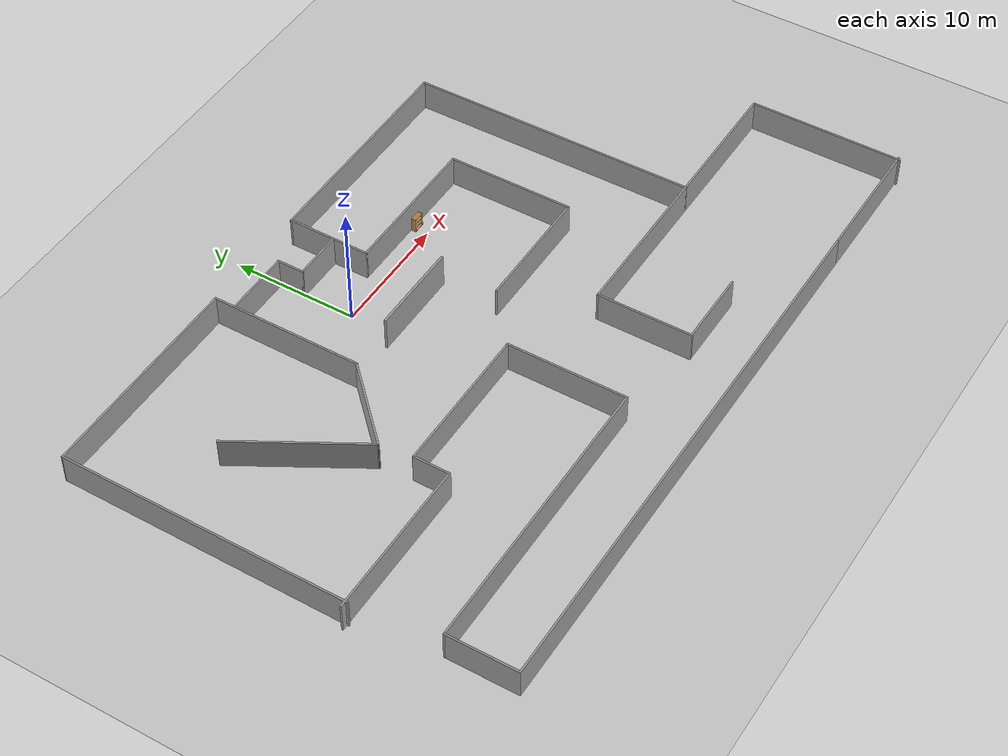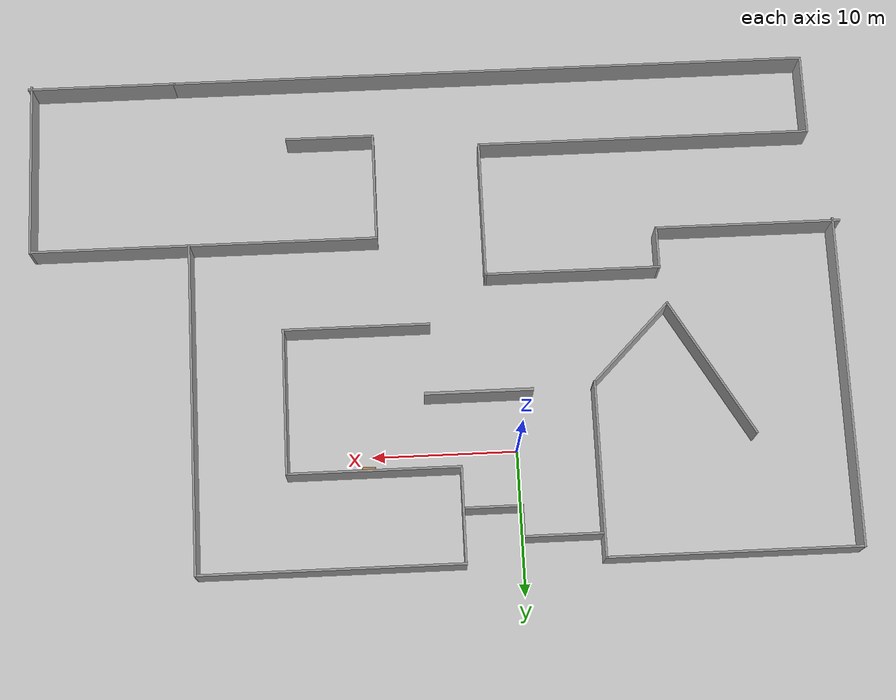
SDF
<sdf version="1.7">
 <world name="default">
  <light name="sun" type="directional">
   <pose>0 0 10 0 -0 0</pose>
   <diffuse>0.8 0.8 0.8 1</diffuse>
   <specular>0.2 0.2 0.2 1</specular>
   <attenuation>
    <range>1000</range>
    <constant>0.9</constant>
    <linear>0.01</linear>
    <quadratic>0.001</quadratic>
   </attenuation>
   <direction>-0.5 0.1 -0.9</direction>
   <spot><inner_angle>0</inner_angle><outer_angle>0</outer_angle><falloff>0</falloff></spot>
  </light>
  <model name="ground_plane">
   <static>1</static>
   <link name="link">
    <collision name="collision">
     <geometry><plane><normal>0 0 1</normal><size>100 100</size></plane></geometry>
     <surface><friction><ode><mu>100</mu><mu2>50</mu2></ode></friction></surface>
    </collision>
    <visual name="visual">
     <cast_shadows>0</cast_shadows>
     <geometry><plane><normal>0 0 1</normal><size>100 100</size></plane></geometry>
     <material>
      <script><uri>file://media/materials/scripts/gazebo.material</uri><name>Gazebo/Grey</name></script>
     </material>
    </visual>
   </link>
  </model>
  <gravity>0 0 -9.8</gravity>
  <magnetic_field>6e-06 2.3e-05 -4.2e-05</magnetic_field>
  <atmosphere type="adiabatic"/>
  <physics type="ode">
   <max_step_size>0.001</max_step_size>
   <real_time_factor>1</real_time_factor>
   <real_time_update_rate>1000</real_time_update_rate>
  </physics>
  <scene><ambient>0.4 0.4 0.4 1</ambient><background>0.7 0.7 0.7 1</background><shadows>1</shadows></scene>
  <spherical_coordinates>
   <surface_model>EARTH_WGS84</surface_model>
   <latitude_deg>0</latitude_deg>
   <longitude_deg>0</longitude_deg>
   <elevation>0</elevation>
   <heading_deg>0</heading_deg>
  </spherical_coordinates>
  <model name="indoor">
   <pose>5.05793 -9.80108 0 0 -0 0</pose>
   <link name="Wall_10">
    <collision name="Wall_10_Collision">
     <geometry><box><size>11 0.15 2.5</size></box></geometry>
     <pose>0 0 1.25 0 -0 0</pose>
    </collision>
    <visual name="Wall_10_Visual">
     <pose>0 0 1.25 0 -0 0</pose>
     <geometry><box><size>11 0.15 2.5</size></box></geometry>
     <material>
      <script><uri>file://media/materials/scripts/gazebo.material</uri><name>Gazebo/Grey</name></script>
      <ambient>1 1 1 1</ambient>
     </material>
     <meta><layer>0</layer></meta>
    </visual>
    <pose>-18.6044 4.94904 0 0 -0 2.0944</pose>
   </link>
   <link name="Wall_12">
    <collision name="Wall_12_Collision">
     <geometry><box><size>18.25 0.15 2.5</size></box></geometry>
     <pose>0 0 1.25 0 -0 0</pose>
    </collision>
    <visual name="Wall_12_Visual">
     <pose>0 0 1.25 0 -0 0</pose>
     <geometry><box><size>18.25 0.15 2.5</size></box></geometry>
     <material>
      <script><uri>file://media/materials/scripts/gazebo.material</uri><name>Gazebo/Grey</name></script>
      <ambient>1 1 1 1</ambient>
     </material>
     <meta><layer>0</layer></meta>
    </visual>
    <pose>7.93209 17.7249 0 0 -0 3.14159</pose>
   </link>
   <link name="Wall_13">
    <collision name="Wall_13_Collision">
     <geometry><box><size>6.75 0.15 2.5</size></box></geometry>
     <pose>0 0 1.25 0 -0 0</pose>
    </collision>
    <visual name="Wall_13_Visual">
     <pose>0 0 1.25 0 -0 0</pose>
     <geometry><box><size>6.75 0.15 2.5</size></box></geometry>
     <material>
      <script><uri>file://media/materials/scripts/gazebo.material</uri><name>Gazebo/Grey</name></script>
      <ambient>1 1 1 1</ambient>
     </material>
     <meta><layer>0</layer></meta>
    </visual>
    <pose>-1.11791 14.4249 0 0 -0 -1.5708</pose>
   </link>
   <link name="Wall_14">
    <collision name="Wall_14_Collision">
     <geometry><box><size>12 0.15 2.5</size></box></geometry>
     <pose>0 0 1.25 0 -0 0</pose>
    </collision>
    <visual name="Wall_14_Visual">
     <pose>0 0 1.25 0 -0 0</pose>
     <geometry><box><size>12 0.15 2.5</size></box></geometry>
     <material>
      <script><uri>file://media/materials/scripts/gazebo.material</uri><name>Gazebo/Grey</name></script>
      <ambient>1 1 1 1</ambient>
     </material>
     <meta><layer>0</layer></meta>
    </visual>
    <pose>4.80709 11.1249 0 0 -0 0</pose>
   </link>
   <link name="Wall_15">
    <collision name="Wall_15_Collision">
     <geometry><box><size>10.25 0.15 2.5</size></box></geometry>
     <pose>0 0 1.25 0 -0 0</pose>
    </collision>
    <visual name="Wall_15_Visual">
     <pose>0 0 1.25 0 -0 0</pose>
     <geometry><box><size>10.25 0.15 2.5</size></box></geometry>
     <material>
      <script><uri>file://media/materials/scripts/gazebo.material</uri><name>Gazebo/Grey</name></script>
      <ambient>1 1 1 1</ambient>
     </material>
     <meta><layer>0</layer></meta>
    </visual>
    <pose>10.7321 6.07486 0 0 -0 -1.5708</pose>
   </link>
   <link name="Wall_16">
    <collision name="Wall_16_Collision">
     <geometry><box><size>10.25 0.15 2.5</size></box></geometry>
     <pose>0 0 1.25 0 -0 0</pose>
    </collision>
    <visual name="Wall_16_Visual">
     <pose>0 0 1.25 0 -0 0</pose>
     <geometry><box><size>10.25 0.15 2.5</size></box></geometry>
     <material>
      <script><uri>file://media/materials/scripts/gazebo.material</uri><name>Gazebo/Grey</name></script>
      <ambient>1 1 1 1</ambient>
     </material>
     <meta><layer>0</layer></meta>
    </visual>
    <pose>5.68209 1.02486 0 0 -0 3.14159</pose>
   </link>
   <link name="Wall_19">
    <collision name="Wall_19_Collision">
     <geometry><box><size>2.25 0.15 2.5</size></box></geometry>
     <pose>0 0 1.25 0 -0 0</pose>
    </collision>
    <visual name="Wall_19_Visual">
     <pose>0 0 1.25 0 -0 0</pose>
     <geometry><box><size>2.25 0.15 2.5</size></box></geometry>
     <material>
      <script><uri>file://media/materials/scripts/gazebo.material</uri><name>Gazebo/Grey</name></script>
      <ambient>1 1 1 1</ambient>
     </material>
     <meta><layer>0</layer></meta>
    </visual>
    <pose>-5.09125 15.025 0 0 -0 -1.5708</pose>
   </link>
   <link name="Wall_20">
    <collision name="Wall_20_Collision">
     <geometry><box><size>4 0.15 2.5</size></box></geometry>
     <pose>0 0 1.25 0 -0 0</pose>
    </collision>
    <visual name="Wall_20_Visual">
     <pose>0 0 1.25 0 -0 0</pose>
     <geometry><box><size>4 0.15 2.5</size></box></geometry>
     <material>
      <script><uri>file://media/materials/scripts/gazebo.material</uri><name>Gazebo/Grey</name></script>
      <ambient>1 1 1 1</ambient>
     </material>
     <meta><layer>0</layer></meta>
    </visual>
    <pose>-3.16625 13.975 0 0 -0 0</pose>
   </link>
   <link name="Wall_24">
    <collision name="Wall_24_Collision">
     <geometry><box><size>5.5 0.15 2.5</size></box></geometry>
     <pose>0 0 1.25 0 -0 0</pose>
    </collision>
    <visual name="Wall_24_Visual">
     <pose>0 0 1.25 0 -0 0</pose>
     <geometry><box><size>5.5 0.15 2.5</size></box></geometry>
     <material>
      <script><uri>file://media/materials/scripts/gazebo.material</uri><name>Gazebo/Grey</name></script>
      <ambient>1 1 1 1</ambient>
     </material>
     <meta><layer>0</layer></meta>
    </visual>
    <pose>-7.76625 16.075 0 0 -0 3.14159</pose>
   </link>
   <link name="Wall_26">
    <collision name="Wall_26_Collision">
     <geometry><box><size>13 0.15 2.5</size></box></geometry>
     <pose>0 0 1.25 0 -0 0</pose>
    </collision>
    <visual name="Wall_26_Visual">
     <pose>0 0 1.25 0 -0 0</pose>
     <geometry><box><size>13 0.15 2.5</size></box></geometry>
     <material>
      <script><uri>file://media/materials/scripts/gazebo.material</uri><name>Gazebo/Grey</name></script>
      <ambient>1 1 1 1</ambient>
     </material>
     <meta><layer>0</layer></meta>
    </visual>
    <pose>-21.975 -5.22606 0 0 -0 0</pose>
   </link>
   <link name="Wall_27">
    <collision name="Wall_27_Collision">
     <geometry><box><size>3 0.15 2.5</size></box></geometry>
     <pose>0 0 1.25 0 -0 0</pose>
    </collision>
    <visual name="Wall_27_Visual">
     <pose>0 0 1.25 0 -0 0</pose>
     <geometry><box><size>3 0.15 2.5</size></box></geometry>
     <material>
      <script><uri>file://media/materials/scripts/gazebo.material</uri><name>Gazebo/Grey</name></script>
      <ambient>1 1 1 1</ambient>
     </material>
     <meta><layer>0</layer></meta>
    </visual>
    <pose>-15.55 -3.80106 0 0 -0 1.5708</pose>
   </link>
   <link name="Wall_28">
    <collision name="Wall_28_Collision">
     <geometry><box><size>12.25 0.15 2.5</size></box></geometry>
     <pose>0 0 1.25 0 -0 0</pose>
    </collision>
    <visual name="Wall_28_Visual">
     <pose>0 0 1.25 0 -0 0</pose>
     <geometry><box><size>12.25 0.15 2.5</size></box></geometry>
     <material>
      <script><uri>file://media/materials/scripts/gazebo.material</uri><name>Gazebo/Grey</name></script>
      <ambient>1 1 1 1</ambient>
     </material>
     <meta><layer>0</layer></meta>
    </visual>
    <pose>-9.5 -2.37606 0 0 -0 0</pose>
   </link>
   <link name="Wall_29">
    <collision name="Wall_29_Collision">
     <geometry><box><size>9.75 0.15 2.5</size></box></geometry>
     <pose>0 0 1.25 0 -0 0</pose>
    </collision>
    <visual name="Wall_29_Visual">
     <pose>0 0 1.25 0 -0 0</pose>
     <geometry><box><size>9.75 0.15 2.5</size></box></geometry>
     <material>
      <script><uri>file://media/materials/scripts/gazebo.material</uri><name>Gazebo/Grey</name></script>
      <ambient>1 1 1 1</ambient>
     </material>
     <meta><layer>0</layer></meta>
    </visual>
    <pose>-3.45 -7.17606 0 0 -0 -1.5708</pose>
   </link>
   <link name="Wall_3">
    <collision name="Wall_3_Collision">
     <geometry><box><size>23.25 0.15 2.5</size></box></geometry>
     <pose>0 0 1.25 0 -0 0</pose>
    </collision>
    <visual name="Wall_3_Visual">
     <pose>0 0 1.25 0 -0 0</pose>
     <geometry><box><size>23.25 0.15 2.5</size></box></geometry>
     <material>
      <script><uri>file://media/materials/scripts/gazebo.material</uri><name>Gazebo/Grey</name></script>
      <ambient>1 1 1 1</ambient>
     </material>
     <meta><layer>0</layer></meta>
    </visual>
    <pose>17.0635 6.17486 0 0 -0 -1.56375</pose>
   </link>
   <link name="Wall_30">
    <collision name="Wall_30_Collision">
     <geometry><box><size>23.5 0.15 2.5</size></box></geometry>
     <pose>0 0 1.25 0 -0 0</pose>
    </collision>
    <visual name="Wall_30_Visual">
     <pose>0 0 1.25 0 -0 0</pose>
     <geometry><box><size>23.5 0.15 2.5</size></box></geometry>
     <material>
      <script><uri>file://media/materials/scripts/gazebo.material</uri><name>Gazebo/Grey</name></script>
      <ambient>1 1 1 1</ambient>
     </material>
     <meta><layer>0</layer></meta>
    </visual>
    <pose>-15.125 -11.9761 0 0 -0 3.14159</pose>
   </link>
   <link name="Wall_31">
    <collision name="Wall_31_Collision">
     <geometry><box><size>5.75 0.15 2.5</size></box></geometry>
     <pose>0 0 1.25 0 -0 0</pose>
    </collision>
    <visual name="Wall_31_Visual">
     <pose>0 0 1.25 0 -0 0</pose>
     <geometry><box><size>5.75 0.15 2.5</size></box></geometry>
     <material>
      <script><uri>file://media/materials/scripts/gazebo.material</uri><name>Gazebo/Grey</name></script>
      <ambient>1 1 1 1</ambient>
     </material>
     <meta><layer>0</layer></meta>
    </visual>
    <pose>-26.8 -14.7761 0 0 -0 -1.5708</pose>
   </link>
   <link name="Wall_32">
    <collision name="Wall_32_Collision">
     <geometry><box><size>45 0.15 2.5</size></box></geometry>
     <pose>0 0 1.25 0 -0 0</pose>
    </collision>
    <visual name="Wall_32_Visual">
     <pose>0 0 1.25 0 -0 0</pose>
     <geometry><box><size>45 0.15 2.5</size></box></geometry>
     <material>
      <script><uri>file://media/materials/scripts/gazebo.material</uri><name>Gazebo/Grey</name></script>
      <ambient>1 1 1 1</ambient>
     </material>
     <meta><layer>0</layer></meta>
    </visual>
    <pose>-4.375 -17.5761 0 0 -0 0</pose>
   </link>
   <link name="Wall_36">
    <collision name="Wall_36_Collision">
     <geometry><box><size>13.25 0.15 2.5</size></box></geometry>
     <pose>0 0 1.25 0 -0 0</pose>
    </collision>
    <visual name="Wall_36_Visual">
     <pose>0 0 1.25 0 -0 0</pose>
     <geometry><box><size>13.25 0.15 2.5</size></box></geometry>
     <material>
      <script><uri>file://media/materials/scripts/gazebo.material</uri><name>Gazebo/Grey</name></script>
      <ambient>1 1 1 1</ambient>
     </material>
     <meta><layer>0</layer></meta>
    </visual>
    <pose>10.5948 -5.37514 0 0 -0 3.14159</pose>
   </link>
   <link name="Wall_37">
    <collision name="Wall_37_Collision">
     <geometry><box><size>7.75 0.15 2.5</size></box></geometry>
     <pose>0 0 1.25 0 -0 0</pose>
    </collision>
    <visual name="Wall_37_Visual">
     <pose>0 0 1.25 0 -0 0</pose>
     <geometry><box><size>7.75 0.15 2.5</size></box></geometry>
     <material>
      <script><uri>file://media/materials/scripts/gazebo.material</uri><name>Gazebo/Grey</name></script>
      <ambient>1 1 1 1</ambient>
     </material>
     <meta><layer>0</layer></meta>
    </visual>
    <pose>4.04483 -9.17514 0 0 -0 -1.5708</pose>
   </link>
   <link name="Wall_38">
    <collision name="Wall_38_Collision">
     <geometry><box><size>6.25 0.15 2.5</size></box></geometry>
     <pose>0 0 1.25 0 -0 0</pose>
    </collision>
    <visual name="Wall_38_Visual">
     <pose>0 0 1.25 0 -0 0</pose>
     <geometry><box><size>6.25 0.15 2.5</size></box></geometry>
     <material>
      <script><uri>file://media/materials/scripts/gazebo.material</uri><name>Gazebo/Grey</name></script>
      <ambient>1 1 1 1</ambient>
     </material>
     <meta><layer>0</layer></meta>
    </visual>
    <pose>7.09483 -12.9751 0 0 -0 0</pose>
   </link>
   <link name="Wall_40">
    <collision name="Wall_40_Collision">
     <geometry><box><size>11.25 0.15 2.5</size></box></geometry>
     <pose>0 0 1.25 0 -0 0</pose>
    </collision>
    <visual name="Wall_40_Visual">
     <pose>0 0 1.25 0 -0 0</pose>
     <geometry><box><size>11.25 0.15 2.5</size></box></geometry>
     <material>
      <script><uri>file://media/materials/scripts/gazebo.material</uri><name>Gazebo/Grey</name></script>
      <ambient>1 1 1 1</ambient>
     </material>
     <meta><layer>0</layer></meta>
    </visual>
    <pose>22.6948 -5.37514 0 0 -0 0</pose>
   </link>
   <link name="Wall_41">
    <collision name="Wall_41_Collision">
     <geometry><box><size>12.5 0.15 2.5</size></box></geometry>
     <pose>0 0 1.25 0 -0 0</pose>
    </collision>
    <visual name="Wall_41_Visual">
     <pose>0 0 1.25 0 -0 0</pose>
     <geometry><box><size>12.5 0.15 2.5</size></box></geometry>
     <material>
      <script><uri>file://media/materials/scripts/gazebo.material</uri><name>Gazebo/Grey</name></script>
      <ambient>1 1 1 1</ambient>
     </material>
     <meta><layer>0</layer></meta>
    </visual>
    <pose>28.2448 -11.5501 0 0 -0 -1.5708</pose>
   </link>
   <link name="Wall_45">
    <collision name="Wall_45_Collision">
     <geometry><box><size>10.5 0.15 2.5</size></box></geometry>
     <pose>0 0 1.25 0 -0 0</pose>
    </collision>
    <visual name="Wall_45_Visual">
     <pose>0 0 1.25 0 -0 0</pose>
     <geometry><box><size>10.5 0.15 2.5</size></box></geometry>
     <material>
      <script><uri>file://media/materials/scripts/gazebo.material</uri><name>Gazebo/Grey</name></script>
      <ambient>1 1 1 1</ambient>
     </material>
     <meta><layer>0</layer></meta>
    </visual>
    <pose>23.225 -17.5761 0 0 -0 0</pose>
   </link>
   <link name="Wall_5">
    <collision name="Wall_5_Collision">
     <geometry><box><size>23.2502 0.15 2.5</size></box></geometry>
     <pose>0 0 1.25 0 -0 0</pose>
    </collision>
    <visual name="Wall_5_Visual">
     <pose>0 0 1.25 0 -0 0</pose>
     <geometry><box><size>23.2502 0.15 2.5</size></box></geometry>
     <material>
      <script><uri>file://media/materials/scripts/gazebo.material</uri><name>Gazebo/Grey</name></script>
      <ambient>1 1 1 1</ambient>
     </material>
     <meta><layer>0</layer></meta>
    </visual>
    <pose>-27.9115 6.17486 0 0 -0 1.56702</pose>
   </link>
   <link name="Wall_7">
    <collision name="Wall_7_Collision">
     <geometry><box><size>17.5 0.15 2.5</size></box></geometry>
     <pose>0 0 1.25 0 -0 0</pose>
    </collision>
    <visual name="Wall_7_Visual">
     <pose>0 0 1.25 0 -0 0</pose>
     <geometry><box><size>17.5 0.15 2.5</size></box></geometry>
     <material>
      <script><uri>file://media/materials/scripts/gazebo.material</uri><name>Gazebo/Grey</name></script>
      <ambient>1 1 1 1</ambient>
     </material>
     <meta><layer>0</layer></meta>
    </visual>
    <pose>-19.1929 17.7249 0 0 -0 0</pose>
   </link>
   <link name="Wall_8">
    <collision name="Wall_8_Collision">
     <geometry><box><size>12.25 0.15 2.5</size></box></geometry>
     <pose>0 0 1.25 0 -0 0</pose>
    </collision>
    <visual name="Wall_8_Visual">
     <pose>0 0 1.25 0 -0 0</pose>
     <geometry><box><size>12.25 0.15 2.5</size></box></geometry>
     <material>
      <script><uri>file://media/materials/scripts/gazebo.material</uri><name>Gazebo/Grey</name></script>
      <ambient>1 1 1 1</ambient>
     </material>
     <meta><layer>0</layer></meta>
    </visual>
    <pose>-10.5179 11.6749 0 0 -0 -1.5708</pose>
   </link>
   <link name="Wall_9">
    <collision name="Wall_9_Collision">
     <geometry><box><size>7.75 0.15 2.5</size></box></geometry>
     <pose>0 0 1.25 0 -0 0</pose>
    </collision>
    <visual name="Wall_9_Visual">
     <pose>0 0 1.25 0 -0 0</pose>
     <geometry><box><size>7.75 0.15 2.5</size></box></geometry>
     <material>
      <script><uri>file://media/materials/scripts/gazebo.material</uri><name>Gazebo/Grey</name></script>
      <ambient>1 1 1 1</ambient>
     </material>
     <meta><layer>0</layer></meta>
    </visual>
    <pose>-13.2049 2.93785 0 0 -0 -2.35619</pose>
   </link>
   <static>1</static>
  </model>
  <model name="bookshelf">
   <static>1</static>
   <link name="link">
    <inertial><mass>1</mass></inertial>
    <collision name="back">
     <pose>0 0.005 0.6 0 -0 0</pose>
     <geometry><box><size>0.9 0.01 1.2</size></box></geometry>
    </collision>
    <visual name="visual1">
     <pose>0 0.005 0.6 0 -0 0</pose>
     <geometry><box><size>0.9 0.01 1.2</size></box></geometry>
     <material>
      <script><uri>file://media/materials/scripts/gazebo.material</uri><name>Gazebo/Wood</name></script>
     </material>
    </visual>
    <collision name="left_side">
     <pose>0.45 -0.195 0.6 0 -0 0</pose>
     <geometry><box><size>0.02 0.4 1.2</size></box></geometry>
    </collision>
    <visual name="visual2">
     <pose>0.45 -0.195 0.6 0 -0 0</pose>
     <geometry><box><size>0.02 0.4 1.2</size></box></geometry>
     <material>
      <script><uri>file://media/materials/scripts/gazebo.material</uri><name>Gazebo/Wood</name></script>
     </material>
    </visual>
    <collision name="right_side">
     <pose>-0.45 -0.195 0.6 0 -0 0</pose>
     <geometry><box><size>0.02 0.4 1.2</size></box></geometry>
    </collision>
    <visual name="visual3">
     <pose>-0.45 -0.195 0.6 0 -0 0</pose>
     <geometry><box><size>0.02 0.4 1.2</size></box></geometry>
     <material>
      <script><uri>file://media/materials/scripts/gazebo.material</uri><name>Gazebo/Wood</name></script>
     </material>
    </visual>
    <collision name="bottom">
     <pose>0 -0.195 0.03 0 -0 0</pose>
     <geometry><box><size>0.88 0.4 0.06</size></box></geometry>
    </collision>
    <visual name="visual4">
     <pose>0 -0.195 0.03 0 -0 0</pose>
     <geometry><box><size>0.88 0.4 0.06</size></box></geometry>
     <material>
      <script><uri>file://media/materials/scripts/gazebo.material</uri><name>Gazebo/Wood</name></script>
     </material>
    </visual>
    <collision name="top">
     <pose>0 -0.195 1.19 0 -0 0</pose>
     <geometry><box><size>0.88 0.4 0.02</size></box></geometry>
    </collision>
    <visual name="visual5">
     <pose>0 -0.195 1.19 0 -0 0</pose>
     <geometry><box><size>0.88 0.4 0.02</size></box></geometry>
     <material>
      <script><uri>file://media/materials/scripts/gazebo.material</uri><name>Gazebo/Wood</name></script>
     </material>
    </visual>
    <collision name="low_shelf">
     <pose>0 -0.195 0.43 0 -0 0</pose>
     <geometry><box><size>0.88 0.4 0.02</size></box></geometry>
    </collision>
    <visual name="visual6">
     <pose>0 -0.195 0.43 0 -0 0</pose>
     <geometry><box><size>0.88 0.4 0.02</size></box></geometry>
     <material>
      <script><uri>file://media/materials/scripts/gazebo.material</uri><name>Gazebo/Wood</name></script>
     </material>
    </visual>
    <collision name="high_shelf">
     <pose>0 -0.195 0.8 0 -0 0</pose>
     <geometry><box><size>0.88 0.4 0.02</size></box></geometry>
    </collision>
    <visual name="visual7">
     <pose>0 -0.195 0.8 0 -0 0</pose>
     <geometry><box><size>0.88 0.4 0.02</size></box></geometry>
     <material>
      <script><uri>file://media/materials/scripts/gazebo.material</uri><name>Gazebo/Wood</name></script>
     </material>
    </visual>
   </link>
   <pose>10.2317 1.23086 0 0 -0 0</pose>
  </model>
  <model name="grey_wall">
   <static>1</static>
   <link name="link">
    <pose>0 0 1.4 0 -0 0</pose>
    <collision name="collision"><geometry><box><size>7.5 0.2 2.8</size></box></geometry></collision>
    <visual name="visual">
     <cast_shadows>0</cast_shadows>
     <geometry><box><size>7.5 0.2 2.8</size></box></geometry>
     <material>
      <script>
       <uri>model://grey_wall/materials/scripts</uri>
       <uri>model://grey_wall/materials/textures</uri>
       <name>vrc/grey_wall</name>
      </script>
     </material>
    </visual>
   </link>
   <pose>2.52082 -3.76964 0 0 -0 0</pose>
  </model>
 </world>
</sdf>
